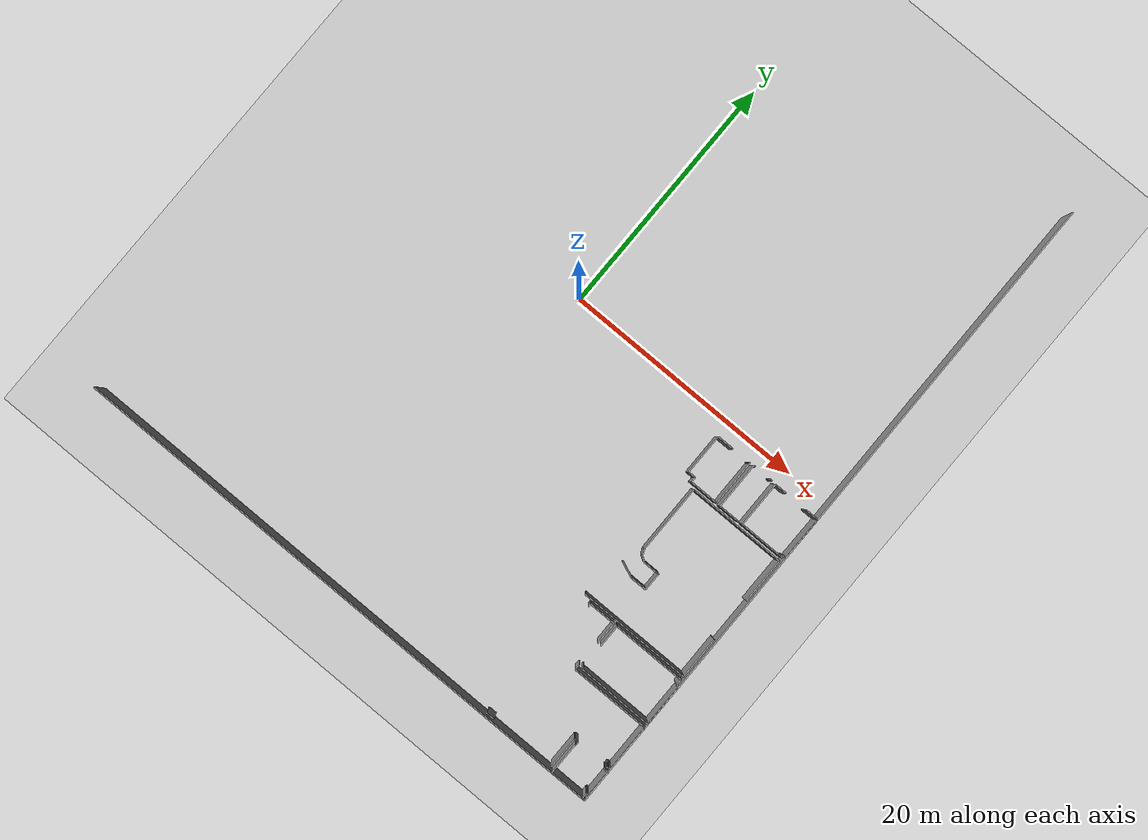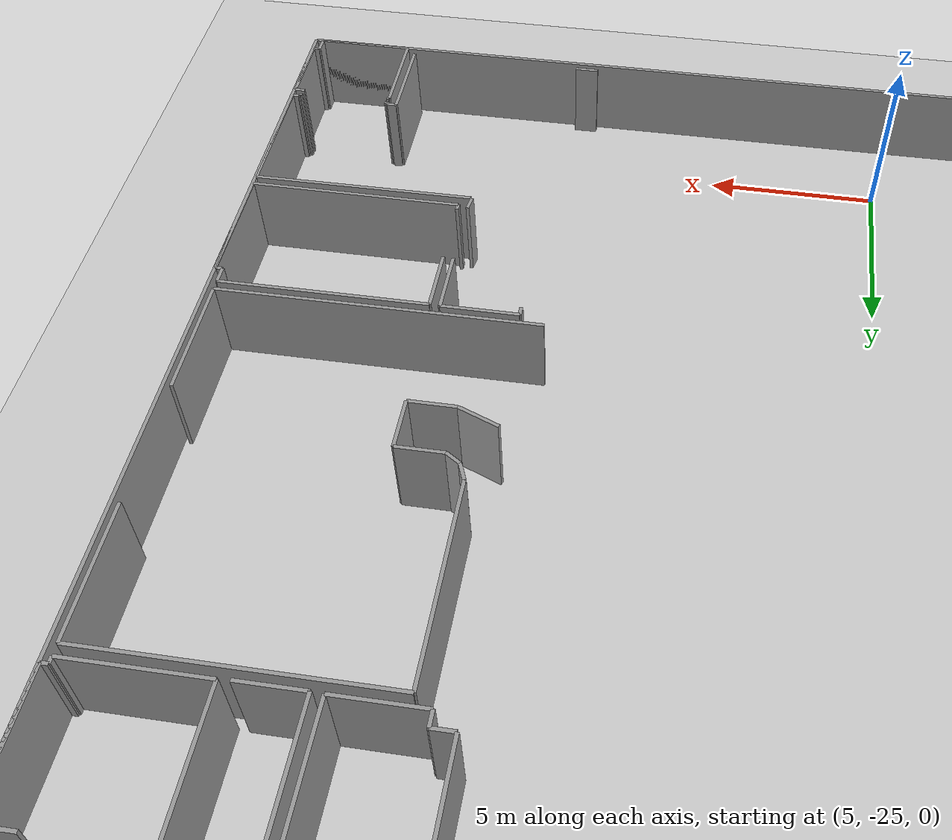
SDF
<sdf version="1.6">
 <world name="default">
  <model name="ground_plane">
   <static>1</static>
   <link name="link">
    <collision name="collision">
     <geometry><plane><normal>0 0 1</normal><size>100 100</size></plane></geometry>
     <surface><friction><ode><mu>100</mu><mu2>50</mu2></ode></friction></surface>
    </collision>
    <visual name="visual">
     <cast_shadows>0</cast_shadows>
     <geometry><plane><normal>0 0 1</normal><size>100 100</size></plane></geometry>
     <material>
      <script><uri>file://media/materials/scripts/gazebo.material</uri><name>Gazebo/Grey</name></script>
     </material>
    </visual>
   </link>
  </model>
  <model name="0510032322">
   <static>1</static>
   <link name="Wall_147">
    <collision name="Wall_147_Collision">
     <geometry><box><size>0.202966432475 0.1 2.5</size></box></geometry>
     <pose>0.101483216237 0 1.25 0 0 0</pose>
    </collision>
    <visual name="Wall_147_Visual">
     <pose>0.101483216237 0 1.25 0 0 0</pose>
     <geometry><box><size>0.202966432475 0.1 2.5</size></box></geometry>
     <material>
      <script><uri>file://media/materials/scripts/gazebo.material</uri><name>Gazebo/Grey</name></script>
      <ambient>1 1 1 1</ambient>
     </material>
    </visual>
    <pose>45.8594974709 -32.3261171722 0 0 0 3.14159265359</pose>
   </link>
   <link name="Wall_148">
    <collision name="Wall_148_Collision">
     <geometry><box><size>0.186592029855 0.1 2.5</size></box></geometry>
     <pose>0.0932960149274 0 1.25 0 0 0</pose>
    </collision>
    <visual name="Wall_148_Visual">
     <pose>0.0932960149274 0 1.25 0 0 0</pose>
     <geometry><box><size>0.186592029855 0.1 2.5</size></box></geometry>
     <material>
      <script><uri>file://media/materials/scripts/gazebo.material</uri><name>Gazebo/Grey</name></script>
      <ambient>1 1 1 1</ambient>
     </material>
    </visual>
    <pose>45.6565310384 -32.3261171722 0 0 0 -1.57079632679</pose>
   </link>
   <link name="Wall_149">
    <collision name="Wall_149_Collision">
     <geometry><box><size>3.704169126 0.1 2.5</size></box></geometry>
     <pose>1.852084563 0 1.25 0 0 0</pose>
    </collision>
    <visual name="Wall_149_Visual">
     <pose>1.852084563 0 1.25 0 0 0</pose>
     <geometry><box><size>3.704169126 0.1 2.5</size></box></geometry>
     <material>
      <script><uri>file://media/materials/scripts/gazebo.material</uri><name>Gazebo/Grey</name></script>
      <ambient>1 1 1 1</ambient>
     </material>
    </visual>
    <pose>45.6565310384 -32.512709202 0 0 0 3.14159265359</pose>
   </link>
   <link name="Wall_150">
    <collision name="Wall_150_Collision">
     <geometry><box><size>3.70988112691 0.1 2.5</size></box></geometry>
     <pose>1.85494056346 0 1.25 0 0 0</pose>
    </collision>
    <visual name="Wall_150_Visual">
     <pose>1.85494056346 0 1.25 0 0 0</pose>
     <geometry><box><size>3.70988112691 0.1 2.5</size></box></geometry>
     <material>
      <script><uri>file://media/materials/scripts/gazebo.material</uri><name>Gazebo/Grey</name></script>
      <ambient>1 1 1 1</ambient>
     </material>
    </visual>
    <pose>41.9523619124 -32.512709202 0 0 0 1.57079632679</pose>
   </link>
   <link name="Wall_151">
    <collision name="Wall_151_Collision">
     <geometry><box><size>0.996299892741 0.1 2.5</size></box></geometry>
     <pose>0.498149946371 0 1.25 0 0 0</pose>
    </collision>
    <visual name="Wall_151_Visual">
     <pose>0.498149946371 0 1.25 0 0 0</pose>
     <geometry><box><size>0.996299892741 0.1 2.5</size></box></geometry>
     <material>
      <script><uri>file://media/materials/scripts/gazebo.material</uri><name>Gazebo/Grey</name></script>
      <ambient>1 1 1 1</ambient>
     </material>
    </visual>
    <pose>41.9523619124 -28.8028280751 0 0 0 0.0</pose>
   </link>
   <link name="Wall_152">
    <collision name="Wall_152_Collision">
     <geometry><box><size>1.06547857048 0.1 2.5</size></box></geometry>
     <pose>0.532739285238 0 1.25 0 0 0</pose>
    </collision>
    <visual name="Wall_152_Visual">
     <pose>0.532739285238 0 1.25 0 0 0</pose>
     <geometry><box><size>1.06547857048 0.1 2.5</size></box></geometry>
     <material>
      <script><uri>file://media/materials/scripts/gazebo.material</uri><name>Gazebo/Grey</name></script>
      <ambient>1 1 1 1</ambient>
     </material>
    </visual>
    <pose>44.8126781034 -28.8028280751 0 0 0 0.0</pose>
   </link>
   <link name="Wall_153">
    <collision name="Wall_153_Collision">
     <geometry><box><size>3.52333850592 0.1 2.5</size></box></geometry>
     <pose>1.76166925296 0 1.25 0 0 0</pose>
    </collision>
    <visual name="Wall_153_Visual">
     <pose>1.76166925296 0 1.25 0 0 0</pose>
     <geometry><box><size>3.52333850592 0.1 2.5</size></box></geometry>
     <material>
      <script><uri>file://media/materials/scripts/gazebo.material</uri><name>Gazebo/Grey</name></script>
      <ambient>1 1 1 1</ambient>
     </material>
    </visual>
    <pose>45.8781566738 -28.8028280751 0 0 0 -1.57609223866</pose>
   </link>
   <link name="Wall_154">
    <collision name="Wall_154_Collision">
     <geometry><box><size>1.75523441417 0.1 2.5</size></box></geometry>
     <pose>0.877617207085 0 1.25 0 0 0</pose>
    </collision>
    <visual name="Wall_154_Visual">
     <pose>0.877617207085 0 1.25 0 0 0</pose>
     <geometry><box><size>1.75523441417 0.1 2.5</size></box></geometry>
     <material>
      <script><uri>file://media/materials/scripts/gazebo.material</uri><name>Gazebo/Grey</name></script>
      <ambient>1 1 1 1</ambient>
     </material>
    </visual>
    <pose>41.6498797306 -32.5391113396 0 0 0 3.14159265359</pose>
   </link>
   <link name="Wall_155">
    <collision name="Wall_155_Collision">
     <geometry><box><size>3.78654887251 0.1 2.5</size></box></geometry>
     <pose>1.89327443626 0 1.25 0 0 0</pose>
    </collision>
    <visual name="Wall_155_Visual">
     <pose>1.89327443626 0 1.25 0 0 0</pose>
     <geometry><box><size>3.78654887251 0.1 2.5</size></box></geometry>
     <material>
      <script><uri>file://media/materials/scripts/gazebo.material</uri><name>Gazebo/Grey</name></script>
      <ambient>1 1 1 1</ambient>
     </material>
    </visual>
    <pose>39.8946453165 -32.5391113396 0 0 0 1.57079632679</pose>
   </link>
   <link name="Wall_156">
    <collision name="Wall_156_Collision">
     <geometry><box><size>0.169329093759 0.1 2.5</size></box></geometry>
     <pose>0.0846645468797 0 1.25 0 0 0</pose>
    </collision>
    <visual name="Wall_156_Visual">
     <pose>0.0846645468797 0 1.25 0 0 0</pose>
     <geometry><box><size>0.169329093759 0.1 2.5</size></box></geometry>
     <material>
      <script><uri>file://media/materials/scripts/gazebo.material</uri><name>Gazebo/Grey</name></script>
      <ambient>1 1 1 1</ambient>
     </material>
    </visual>
    <pose>39.8946453165 -28.7525624671 0 0 0 0.0</pose>
   </link>
   <link name="Wall_157">
    <collision name="Wall_157_Collision">
     <geometry><box><size>0.230891770276 0.1 2.5</size></box></geometry>
     <pose>0.115445885138 0 1.25 0 0 0</pose>
    </collision>
    <visual name="Wall_157_Visual">
     <pose>0.115445885138 0 1.25 0 0 0</pose>
     <geometry><box><size>0.230891770276 0.1 2.5</size></box></geometry>
     <material>
      <script><uri>file://media/materials/scripts/gazebo.material</uri><name>Gazebo/Grey</name></script>
      <ambient>1 1 1 1</ambient>
     </material>
    </visual>
    <pose>41.4098487589 -28.7525624671 0 0 0 0.0</pose>
   </link>
   <link name="Wall_159">
    <collision name="Wall_159_Collision">
     <geometry><box><size>2.35842171068 0.1 2.5</size></box></geometry>
     <pose>1.17921085534 0 1.25 0 0 0</pose>
    </collision>
    <visual name="Wall_159_Visual">
     <pose>1.17921085534 0 1.25 0 0 0</pose>
     <geometry><box><size>2.35842171068 0.1 2.5</size></box></geometry>
     <material>
      <script><uri>file://media/materials/scripts/gazebo.material</uri><name>Gazebo/Grey</name></script>
      <ambient>1 1 1 1</ambient>
     </material>
    </visual>
    <pose>39.5749001987 -32.524894804 0 0 0 3.14159265359</pose>
   </link>
   <link name="Wall_160">
    <collision name="Wall_160_Collision">
     <geometry><box><size>0.418245400253 0.1 2.5</size></box></geometry>
     <pose>0.209122700126 0 1.25 0 0 0</pose>
    </collision>
    <visual name="Wall_160_Visual">
     <pose>0.209122700126 0 1.25 0 0 0</pose>
     <geometry><box><size>0.418245400253 0.1 2.5</size></box></geometry>
     <material>
      <script><uri>file://media/materials/scripts/gazebo.material</uri><name>Gazebo/Grey</name></script>
      <ambient>1 1 1 1</ambient>
     </material>
    </visual>
    <pose>37.216478488 -32.524894804 0 0 0 1.57079632679</pose>
   </link>
   <link name="Wall_161">
    <collision name="Wall_161_Collision">
     <geometry><box><size>0.603695029925 0.1 2.5</size></box></geometry>
     <pose>0.301847514962 0 1.25 0 0 0</pose>
    </collision>
    <visual name="Wall_161_Visual">
     <pose>0.301847514962 0 1.25 0 0 0</pose>
     <geometry><box><size>0.603695029925 0.1 2.5</size></box></geometry>
     <material>
      <script><uri>file://media/materials/scripts/gazebo.material</uri><name>Gazebo/Grey</name></script>
      <ambient>1 1 1 1</ambient>
     </material>
    </visual>
    <pose>37.216478488 -32.1066494037 0 0 0 3.14159265359</pose>
   </link>
   <link name="Wall_162">
    <collision name="Wall_162_Collision">
     <geometry><box><size>3.3035674619 0.1 2.5</size></box></geometry>
     <pose>1.65178373095 0 1.25 0 0 0</pose>
    </collision>
    <visual name="Wall_162_Visual">
     <pose>1.65178373095 0 1.25 0 0 0</pose>
     <geometry><box><size>3.3035674619 0.1 2.5</size></box></geometry>
     <material>
      <script><uri>file://media/materials/scripts/gazebo.material</uri><name>Gazebo/Grey</name></script>
      <ambient>1 1 1 1</ambient>
     </material>
    </visual>
    <pose>36.612783458 -32.1066494037 0 0 0 1.57079632679</pose>
   </link>
   <link name="Wall_163">
    <collision name="Wall_163_Collision">
     <geometry><box><size>1.39385515635 0.1 2.5</size></box></geometry>
     <pose>0.696927578175 0 1.25 0 0 0</pose>
    </collision>
    <visual name="Wall_163_Visual">
     <pose>0.696927578175 0 1.25 0 0 0</pose>
     <geometry><box><size>1.39385515635 0.1 2.5</size></box></geometry>
     <material>
      <script><uri>file://media/materials/scripts/gazebo.material</uri><name>Gazebo/Grey</name></script>
      <ambient>1 1 1 1</ambient>
     </material>
    </visual>
    <pose>36.612783458 -28.8030819418 0 0 0 0.0</pose>
   </link>
   <link name="Wall_164">
    <collision name="Wall_164_Collision">
     <geometry><box><size>0.11360535151 0.1 2.5</size></box></geometry>
     <pose>0.0568026757551 0 1.25 0 0 0</pose>
    </collision>
    <visual name="Wall_164_Visual">
     <pose>0.0568026757551 0 1.25 0 0 0</pose>
     <geometry><box><size>0.11360535151 0.1 2.5</size></box></geometry>
     <material>
      <script><uri>file://media/materials/scripts/gazebo.material</uri><name>Gazebo/Grey</name></script>
      <ambient>1 1 1 1</ambient>
     </material>
    </visual>
    <pose>39.4600255136 -28.8030819418 0 0 0 0.0</pose>
   </link>
   <link name="Wall_165">
    <collision name="Wall_165_Collision">
     <geometry><box><size>3.72181307861 0.1 2.5</size></box></geometry>
     <pose>1.86090653931 0 1.25 0 0 0</pose>
    </collision>
    <visual name="Wall_165_Visual">
     <pose>1.86090653931 0 1.25 0 0 0</pose>
     <geometry><box><size>3.72181307861 0.1 2.5</size></box></geometry>
     <material>
      <script><uri>file://media/materials/scripts/gazebo.material</uri><name>Gazebo/Grey</name></script>
      <ambient>1 1 1 1</ambient>
     </material>
    </visual>
    <pose>39.5736308651 -28.8030819418 0 0 0 -1.57045527432</pose>
   </link>
   <link name="Wall_166">
    <collision name="Wall_166_Collision">
     <geometry><box><size>0.696737178145 0.1 2.5</size></box></geometry>
     <pose>0.348368589072 0 1.25 0 0 0</pose>
    </collision>
    <visual name="Wall_166_Visual">
     <pose>0.348368589072 0 1.25 0 0 0</pose>
     <geometry><box><size>0.696737178145 0.1 2.5</size></box></geometry>
     <material>
      <script><uri>file://media/materials/scripts/gazebo.material</uri><name>Gazebo/Grey</name></script>
      <ambient>1 1 1 1</ambient>
     </material>
    </visual>
    <pose>37.2414843586 -54.5089900548 0 0 0 3.14159265359</pose>
   </link>
   <link name="Wall_195">
    <collision name="Wall_195_Collision">
     <geometry><box><size>0.258690174724 0.1 2.5</size></box></geometry>
     <pose>0.129345087362 0 1.25 0 0 0</pose>
    </collision>
    <visual name="Wall_195_Visual">
     <pose>0.129345087362 0 1.25 0 0 0</pose>
     <geometry><box><size>0.258690174724 0.1 2.5</size></box></geometry>
     <material>
      <script><uri>file://media/materials/scripts/gazebo.material</uri><name>Gazebo/Grey</name></script>
      <ambient>1 1 1 1</ambient>
     </material>
    </visual>
    <pose>37.2699174299 -44.0673254508 0 0 0 1.57079632679</pose>
   </link>
   <link name="Wall_196">
    <collision name="Wall_196_Collision">
     <geometry><box><size>2.17754168174 0.1 2.5</size></box></geometry>
     <pose>1.08877084087 0 1.25 0 0 0</pose>
    </collision>
    <visual name="Wall_196_Visual">
     <pose>1.08877084087 0 1.25 0 0 0</pose>
     <geometry><box><size>2.17754168174 0.1 2.5</size></box></geometry>
     <material>
      <script><uri>file://media/materials/scripts/gazebo.material</uri><name>Gazebo/Grey</name></script>
      <ambient>1 1 1 1</ambient>
     </material>
    </visual>
    <pose>37.2699174299 -43.808635276 0 0 0 0.0</pose>
   </link>
   <link name="Wall_197">
    <collision name="Wall_197_Collision">
     <geometry><box><size>1.80016882136 0.1 2.5</size></box></geometry>
     <pose>0.90008441068 0 1.25 0 0 0</pose>
    </collision>
    <visual name="Wall_197_Visual">
     <pose>0.90008441068 0 1.25 0 0 0</pose>
     <geometry><box><size>1.80016882136 0.1 2.5</size></box></geometry>
     <material>
      <script><uri>file://media/materials/scripts/gazebo.material</uri><name>Gazebo/Grey</name></script>
      <ambient>1 1 1 1</ambient>
     </material>
    </visual>
    <pose>39.4474591116 -43.808635276 0 0 0 -1.57079632679</pose>
   </link>
   <link name="Wall_198">
    <collision name="Wall_198_Collision">
     <geometry><box><size>0.413773529386 0.1 2.5</size></box></geometry>
     <pose>0.206886764693 0 1.25 0 0 0</pose>
    </collision>
    <visual name="Wall_198_Visual">
     <pose>0.206886764693 0 1.25 0 0 0</pose>
     <geometry><box><size>0.413773529386 0.1 2.5</size></box></geometry>
     <material>
      <script><uri>file://media/materials/scripts/gazebo.material</uri><name>Gazebo/Grey</name></script>
      <ambient>1 1 1 1</ambient>
     </material>
    </visual>
    <pose>39.4474591116 -47.6553505582 0 0 0 -1.7105241874</pose>
   </link>
   <link name="Wall_199">
    <collision name="Wall_199_Collision">
     <geometry><box><size>9.10366012325 0.1 2.5</size></box></geometry>
     <pose>4.55183006163 0 1.25 0 0 0</pose>
    </collision>
    <visual name="Wall_199_Visual">
     <pose>4.55183006163 0 1.25 0 0 0</pose>
     <geometry><box><size>9.10366012325 0.1 2.5</size></box></geometry>
     <material>
      <script><uri>file://media/materials/scripts/gazebo.material</uri><name>Gazebo/Grey</name></script>
      <ambient>1 1 1 1</ambient>
     </material>
    </visual>
    <pose>45.6669395734 -43.5310320316 0 0 0 3.14159265359</pose>
   </link>
   <link name="Wall_202">
    <collision name="Wall_202_Collision">
     <geometry><box><size>1.22122420559 0.1 2.5</size></box></geometry>
     <pose>0.610612102797 0 1.25 0 0 0</pose>
    </collision>
    <visual name="Wall_202_Visual">
     <pose>0.610612102797 0 1.25 0 0 0</pose>
     <geometry><box><size>1.22122420559 0.1 2.5</size></box></geometry>
     <material>
      <script><uri>file://media/materials/scripts/gazebo.material</uri><name>Gazebo/Grey</name></script>
      <ambient>1 1 1 1</ambient>
     </material>
    </visual>
    <pose>37.1565659451 -40.0615626765 0 0 0 -0.375681091266</pose>
   </link>
   <link name="Wall_203">
    <collision name="Wall_203_Collision">
     <geometry><box><size>1.32518421203 0.1 2.5</size></box></geometry>
     <pose>0.662592106015 0 1.25 0 0 0</pose>
    </collision>
    <visual name="Wall_203_Visual">
     <pose>0.662592106015 0 1.25 0 0 0</pose>
     <geometry><box><size>1.32518421203 0.1 2.5</size></box></geometry>
     <material>
      <script><uri>file://media/materials/scripts/gazebo.material</uri><name>Gazebo/Grey</name></script>
      <ambient>1 1 1 1</ambient>
     </material>
    </visual>
    <pose>38.2926194602 -40.5096374149 0 0 0 0.0</pose>
   </link>
   <link name="Wall_204">
    <collision name="Wall_204_Collision">
     <geometry><box><size>1.43256982921 0.1 2.5</size></box></geometry>
     <pose>0.716284914606 0 1.25 0 0 0</pose>
    </collision>
    <visual name="Wall_204_Visual">
     <pose>0.716284914606 0 1.25 0 0 0</pose>
     <geometry><box><size>1.43256982921 0.1 2.5</size></box></geometry>
     <material>
      <script><uri>file://media/materials/scripts/gazebo.material</uri><name>Gazebo/Grey</name></script>
      <ambient>1 1 1 1</ambient>
     </material>
    </visual>
    <pose>39.6178036722 -40.5096374149 0 0 0 1.57079632679</pose>
   </link>
   <link name="Wall_205">
    <collision name="Wall_205_Collision">
     <geometry><box><size>1.3189644777 0.1 2.5</size></box></geometry>
     <pose>0.65948223885 0 1.25 0 0 0</pose>
    </collision>
    <visual name="Wall_205_Visual">
     <pose>0.65948223885 0 1.25 0 0 0</pose>
     <geometry><box><size>1.3189644777 0.1 2.5</size></box></geometry>
     <material>
      <script><uri>file://media/materials/scripts/gazebo.material</uri><name>Gazebo/Grey</name></script>
      <ambient>1 1 1 1</ambient>
     </material>
    </visual>
    <pose>39.6178036722 -39.0770675857 0 0 0 3.14159265359</pose>
   </link>
   <link name="Wall_206">
    <collision name="Wall_206_Collision">
     <geometry><box><size>0.470529768932 0.1 2.5</size></box></geometry>
     <pose>0.235264884466 0 1.25 0 0 0</pose>
    </collision>
    <visual name="Wall_206_Visual">
     <pose>0.235264884466 0 1.25 0 0 0</pose>
     <geometry><box><size>0.470529768932 0.1 2.5</size></box></geometry>
     <material>
      <script><uri>file://media/materials/scripts/gazebo.material</uri><name>Gazebo/Grey</name></script>
      <ambient>1 1 1 1</ambient>
     </material>
    </visual>
    <pose>38.2988391945 -39.0770675857 0 0 0 2.57267027563</pose>
   </link>
   <link name="Wall_207">
    <collision name="Wall_207_Collision">
     <geometry><box><size>0.513782627392 0.1 2.5</size></box></geometry>
     <pose>0.256891313696 0 1.25 0 0 0</pose>
    </collision>
    <visual name="Wall_207_Visual">
     <pose>0.256891313696 0 1.25 0 0 0</pose>
     <geometry><box><size>0.513782627392 0.1 2.5</size></box></geometry>
     <material>
      <script><uri>file://media/materials/scripts/gazebo.material</uri><name>Gazebo/Grey</name></script>
      <ambient>1 1 1 1</ambient>
     </material>
    </visual>
    <pose>37.9024263311 -38.8235816784 0 0 0 1.97718035878</pose>
   </link>
   <link name="Wall_208">
    <collision name="Wall_208_Collision">
     <geometry><box><size>5.52134701675 0.1 2.5</size></box></geometry>
     <pose>2.76067350837 0 1.25 0 0 0</pose>
    </collision>
    <visual name="Wall_208_Visual">
     <pose>2.76067350837 0 1.25 0 0 0</pose>
     <geometry><box><size>5.52134701675 0.1 2.5</size></box></geometry>
     <material>
      <script><uri>file://media/materials/scripts/gazebo.material</uri><name>Gazebo/Grey</name></script>
      <ambient>1 1 1 1</ambient>
     </material>
    </visual>
    <pose>37.6993329652 -38.3516434696 0 0 0 1.57079632679</pose>
   </link>
   <link name="Wall_209">
    <collision name="Wall_209_Collision">
     <geometry><box><size>7.95719807315 0.1 2.5</size></box></geometry>
     <pose>3.97859903658 0 1.25 0 0 0</pose>
    </collision>
    <visual name="Wall_209_Visual">
     <pose>3.97859903658 0 1.25 0 0 0</pose>
     <geometry><box><size>7.95719807315 0.1 2.5</size></box></geometry>
     <material>
      <script><uri>file://media/materials/scripts/gazebo.material</uri><name>Gazebo/Grey</name></script>
      <ambient>1 1 1 1</ambient>
     </material>
    </visual>
    <pose>37.6993329652 -32.8302964528 0 0 0 0.0</pose>
   </link>
   <link name="Wall_210">
    <collision name="Wall_210_Collision">
     <geometry><box><size>3.69718779155 0.1 2.5</size></box></geometry>
     <pose>1.84859389578 0 1.25 0 0 0</pose>
    </collision>
    <visual name="Wall_210_Visual">
     <pose>1.84859389578 0 1.25 0 0 0</pose>
     <geometry><box><size>3.69718779155 0.1 2.5</size></box></geometry>
     <material>
      <script><uri>file://media/materials/scripts/gazebo.material</uri><name>Gazebo/Grey</name></script>
      <ambient>1 1 1 1</ambient>
     </material>
    </visual>
    <pose>45.6565310384 -32.8302964528 0 0 0 -1.57079632679</pose>
   </link>
   <link name="Wall_211">
    <collision name="Wall_211_Collision">
     <geometry><box><size>3.41972732062 0.1 2.5</size></box></geometry>
     <pose>1.70986366031 0 1.25 0 0 0</pose>
    </collision>
    <visual name="Wall_211_Visual">
     <pose>1.70986366031 0 1.25 0 0 0</pose>
     <geometry><box><size>3.41972732062 0.1 2.5</size></box></geometry>
     <material>
      <script><uri>file://media/materials/scripts/gazebo.material</uri><name>Gazebo/Grey</name></script>
      <ambient>1 1 1 1</ambient>
     </material>
    </visual>
    <pose>45.6565310384 -40.1113205511 0 0 0 -1.56775264813</pose>
   </link>
   <link name="Wall_212">
    <collision name="Wall_212_Collision">
     <geometry><box><size>3.46946935512 0.1 2.5</size></box></geometry>
     <pose>1.73473467756 0 1.25 0 0 0</pose>
    </collision>
    <visual name="Wall_212_Visual">
     <pose>1.73473467756 0 1.25 0 0 0</pose>
     <geometry><box><size>3.46946935512 0.1 2.5</size></box></geometry>
     <material>
      <script><uri>file://media/materials/scripts/gazebo.material</uri><name>Gazebo/Grey</name></script>
      <ambient>1 1 1 1</ambient>
     </material>
    </visual>
    <pose>45.8598782709 -47.7642593756 0 0 0 1.57079632679</pose>
   </link>
   <link name="Wall_213">
    <collision name="Wall_213_Collision">
     <geometry><box><size>0.197889098329 0.1 2.5</size></box></geometry>
     <pose>0.0989445491645 0 1.25 0 0 0</pose>
    </collision>
    <visual name="Wall_213_Visual">
     <pose>0.0989445491645 0 1.25 0 0 0</pose>
     <geometry><box><size>0.197889098329 0.1 2.5</size></box></geometry>
     <material>
      <script><uri>file://media/materials/scripts/gazebo.material</uri><name>Gazebo/Grey</name></script>
      <ambient>1 1 1 1</ambient>
     </material>
    </visual>
    <pose>45.8598782709 -44.2947900205 0 0 0 3.14159265359</pose>
   </link>
   <link name="Wall_214">
    <collision name="Wall_214_Collision">
     <geometry><box><size>0.47739634305 0.1 2.5</size></box></geometry>
     <pose>0.238698171525 0 1.25 0 0 0</pose>
    </collision>
    <visual name="Wall_214_Visual">
     <pose>0.238698171525 0 1.25 0 0 0</pose>
     <geometry><box><size>0.47739634305 0.1 2.5</size></box></geometry>
     <material>
      <script><uri>file://media/materials/scripts/gazebo.material</uri><name>Gazebo/Grey</name></script>
      <ambient>1 1 1 1</ambient>
     </material>
    </visual>
    <pose>45.6619891726 -44.2947900205 0 0 0 1.57079632679</pose>
   </link>
   <link name="Wall_215">
    <collision name="Wall_215_Collision">
     <geometry><box><size>5.92740681505 0.1 2.5</size></box></geometry>
     <pose>2.96370340753 0 1.25 0 0 0</pose>
    </collision>
    <visual name="Wall_215_Visual">
     <pose>2.96370340753 0 1.25 0 0 0</pose>
     <geometry><box><size>5.92740681505 0.1 2.5</size></box></geometry>
     <material>
      <script><uri>file://media/materials/scripts/gazebo.material</uri><name>Gazebo/Grey</name></script>
      <ambient>1 1 1 1</ambient>
     </material>
    </visual>
    <pose>45.6619891726 -43.8173936774 0 0 0 3.14159265359</pose>
   </link>
   <link name="Wall_216">
    <collision name="Wall_216_Collision">
     <geometry><box><size>1.80588082227 0.1 2.5</size></box></geometry>
     <pose>0.902940411137 0 1.25 0 0 0</pose>
    </collision>
    <visual name="Wall_216_Visual">
     <pose>0.902940411137 0 1.25 0 0 0</pose>
     <geometry><box><size>1.80588082227 0.1 2.5</size></box></geometry>
     <material>
      <script><uri>file://media/materials/scripts/gazebo.material</uri><name>Gazebo/Grey</name></script>
      <ambient>1 1 1 1</ambient>
     </material>
    </visual>
    <pose>39.7345823575 -43.8173936774 0 0 0 -1.57079632679</pose>
   </link>
   <link name="Wall_217">
    <collision name="Wall_217_Collision">
     <geometry><box><size>0.191923230708 0.1 2.5</size></box></geometry>
     <pose>0.0959616153539 0 1.25 0 0 0</pose>
    </collision>
    <visual name="Wall_217_Visual">
     <pose>0.0959616153539 0 1.25 0 0 0</pose>
     <geometry><box><size>0.191923230708 0.1 2.5</size></box></geometry>
     <material>
      <script><uri>file://media/materials/scripts/gazebo.material</uri><name>Gazebo/Grey</name></script>
      <ambient>1 1 1 1</ambient>
     </material>
    </visual>
    <pose>39.7345823575 -47.5526614751 0 0 0 -1.57079632679</pose>
   </link>
   <link name="Wall_218">
    <collision name="Wall_218_Collision">
     <geometry><box><size>6.12532751117 0.1 2.5</size></box></geometry>
     <pose>3.06266375559 0 1.25 0 0 0</pose>
    </collision>
    <visual name="Wall_218_Visual">
     <pose>3.06266375559 0 1.25 0 0 0</pose>
     <geometry><box><size>6.12532751117 0.1 2.5</size></box></geometry>
     <material>
      <script><uri>file://media/materials/scripts/gazebo.material</uri><name>Gazebo/Grey</name></script>
      <ambient>1 1 1 1</ambient>
     </material>
    </visual>
    <pose>39.7345823575 -47.7445847058 0 0 0 -0.00321202476271</pose>
   </link>
   <link name="Wall_219">
    <collision name="Wall_219_Collision">
     <geometry><box><size>2.62713962034 0.1 2.5</size></box></geometry>
     <pose>1.31356981017 0 1.25 0 0 0</pose>
    </collision>
    <visual name="Wall_219_Visual">
     <pose>1.31356981017 0 1.25 0 0 0</pose>
     <geometry><box><size>2.62713962034 0.1 2.5</size></box></geometry>
     <material>
      <script><uri>file://media/materials/scripts/gazebo.material</uri><name>Gazebo/Grey</name></script>
      <ambient>1 1 1 1</ambient>
     </material>
    </visual>
    <pose>42.5360014724 -54.5136865889 0 0 0 1.57079632679</pose>
   </link>
   <link name="Wall_220">
    <collision name="Wall_220_Collision">
     <geometry><box><size>0.275699244112 0.1 2.5</size></box></geometry>
     <pose>0.137849622056 0 1.25 0 0 0</pose>
    </collision>
    <visual name="Wall_220_Visual">
     <pose>0.137849622056 0 1.25 0 0 0</pose>
     <geometry><box><size>0.275699244112 0.1 2.5</size></box></geometry>
     <material>
      <script><uri>file://media/materials/scripts/gazebo.material</uri><name>Gazebo/Grey</name></script>
      <ambient>1 1 1 1</ambient>
     </material>
    </visual>
    <pose>42.5360014724 -51.8865469685 0 0 0 0.0</pose>
   </link>
   <link name="Wall_221">
    <collision name="Wall_221_Collision">
     <geometry><box><size>0.0695594777962 0.1 2.5</size></box></geometry>
     <pose>0.0347797388981 0 1.25 0 0 0</pose>
    </collision>
    <visual name="Wall_221_Visual">
     <pose>0.0347797388981 0 1.25 0 0 0</pose>
     <geometry><box><size>0.0695594777962 0.1 2.5</size></box></geometry>
     <material>
      <script><uri>file://media/materials/scripts/gazebo.material</uri><name>Gazebo/Grey</name></script>
      <ambient>1 1 1 1</ambient>
     </material>
    </visual>
    <pose>42.8117007165 -51.8865469685 0 0 0 -1.57079632679</pose>
   </link>
   <link name="Wall_222">
    <collision name="Wall_222_Collision">
     <geometry><box><size>0.103577616572 0.1 2.5</size></box></geometry>
     <pose>0.0517888082862 0 1.25 0 0 0</pose>
    </collision>
    <visual name="Wall_222_Visual">
     <pose>0.0517888082862 0 1.25 0 0 0</pose>
     <geometry><box><size>0.103577616572 0.1 2.5</size></box></geometry>
     <material>
      <script><uri>file://media/materials/scripts/gazebo.material</uri><name>Gazebo/Grey</name></script>
      <ambient>1 1 1 1</ambient>
     </material>
    </visual>
    <pose>42.8117007165 -51.9561064463 0 0 0 0.0</pose>
   </link>
   <link name="Wall_223">
    <collision name="Wall_223_Collision">
     <geometry><box><size>0.109797350901 0.1 2.5</size></box></geometry>
     <pose>0.0548986754505 0 1.25 0 0 0</pose>
    </collision>
    <visual name="Wall_223_Visual">
     <pose>0.0548986754505 0 1.25 0 0 0</pose>
     <geometry><box><size>0.109797350901 0.1 2.5</size></box></geometry>
     <material>
      <script><uri>file://media/materials/scripts/gazebo.material</uri><name>Gazebo/Grey</name></script>
      <ambient>1 1 1 1</ambient>
     </material>
    </visual>
    <pose>45.5576499559 -51.9561064463 0 0 0 0.0</pose>
   </link>
   <link name="Wall_224">
    <collision name="Wall_224_Collision">
     <geometry><box><size>0.0718442781617 0.1 2.5</size></box></geometry>
     <pose>0.0359221390809 0 1.25 0 0 0</pose>
    </collision>
    <visual name="Wall_224_Visual">
     <pose>0.0359221390809 0 1.25 0 0 0</pose>
     <geometry><box><size>0.0718442781617 0.1 2.5</size></box></geometry>
     <material>
      <script><uri>file://media/materials/scripts/gazebo.material</uri><name>Gazebo/Grey</name></script>
      <ambient>1 1 1 1</ambient>
     </material>
    </visual>
    <pose>45.6674473068 -51.9561064463 0 0 0 1.57079632679</pose>
   </link>
   <link name="Wall_225">
    <collision name="Wall_225_Collision">
     <geometry><box><size>0.186592029855 0.1 2.5</size></box></geometry>
     <pose>0.0932960149274 0 1.25 0 0 0</pose>
    </collision>
    <visual name="Wall_225_Visual">
     <pose>0.0932960149274 0 1.25 0 0 0</pose>
     <geometry><box><size>0.186592029855 0.1 2.5</size></box></geometry>
     <material>
      <script><uri>file://media/materials/scripts/gazebo.material</uri><name>Gazebo/Grey</name></script>
      <ambient>1 1 1 1</ambient>
     </material>
    </visual>
    <pose>45.6674473068 -51.8842621681 0 0 0 0.0</pose>
   </link>
   <link name="Wall_226">
    <collision name="Wall_226_Collision">
     <geometry><box><size>3.8224710116 0.1 2.5</size></box></geometry>
     <pose>1.9112355058 0 1.25 0 0 0</pose>
    </collision>
    <visual name="Wall_226_Visual">
     <pose>1.9112355058 0 1.25 0 0 0</pose>
     <geometry><box><size>3.8224710116 0.1 2.5</size></box></geometry>
     <material>
      <script><uri>file://media/materials/scripts/gazebo.material</uri><name>Gazebo/Grey</name></script>
      <ambient>1 1 1 1</ambient>
     </material>
    </visual>
    <pose>45.8540393366 -51.8842621681 0 0 0 1.57079632679</pose>
   </link>
   <link name="Wall_227">
    <collision name="Wall_227_Collision">
     <geometry><box><size>6.42247820794 0.1 2.5</size></box></geometry>
     <pose>3.21123910397 0 1.25 0 0 0</pose>
    </collision>
    <visual name="Wall_227_Visual">
     <pose>3.21123910397 0 1.25 0 0 0</pose>
     <geometry><box><size>6.42247820794 0.1 2.5</size></box></geometry>
     <material>
      <script><uri>file://media/materials/scripts/gazebo.material</uri><name>Gazebo/Grey</name></script>
      <ambient>1 1 1 1</ambient>
     </material>
    </visual>
    <pose>45.8540393366 -48.0617911566 0 0 0 -3.13846994895</pose>
   </link>
   <link name="Wall_228">
    <collision name="Wall_228_Collision">
     <geometry><box><size>2.8260441855 0.1 2.5</size></box></geometry>
     <pose>1.41302209275 0 1.25 0 0 0</pose>
    </collision>
    <visual name="Wall_228_Visual">
     <pose>1.41302209275 0 1.25 0 0 0</pose>
     <geometry><box><size>2.8260441855 0.1 2.5</size></box></geometry>
     <material>
      <script><uri>file://media/materials/scripts/gazebo.material</uri><name>Gazebo/Grey</name></script>
      <ambient>1 1 1 1</ambient>
     </material>
    </visual>
    <pose>45.6509459708 -54.77072663 0 0 0 3.14159265359</pose>
   </link>
   <link name="Wall_229">
    <collision name="Wall_229_Collision">
     <geometry><box><size>2.59870654913 0.1 2.5</size></box></geometry>
     <pose>1.29935327456 0 1.25 0 0 0</pose>
    </collision>
    <visual name="Wall_229_Visual">
     <pose>1.29935327456 0 1.25 0 0 0</pose>
     <geometry><box><size>2.59870654913 0.1 2.5</size></box></geometry>
     <material>
      <script><uri>file://media/materials/scripts/gazebo.material</uri><name>Gazebo/Grey</name></script>
      <ambient>1 1 1 1</ambient>
     </material>
    </visual>
    <pose>42.8249017853 -54.77072663 0 0 0 1.57079632679</pose>
   </link>
   <link name="Wall_230">
    <collision name="Wall_230_Collision">
     <geometry><box><size>0.0808565462704 0.1 2.5</size></box></geometry>
     <pose>0.0404282731352 0 1.25 0 0 0</pose>
    </collision>
    <visual name="Wall_230_Visual">
     <pose>0.0404282731352 0 1.25 0 0 0</pose>
     <geometry><box><size>0.0808565462704 0.1 2.5</size></box></geometry>
     <material>
      <script><uri>file://media/materials/scripts/gazebo.material</uri><name>Gazebo/Grey</name></script>
      <ambient>1 1 1 1</ambient>
     </material>
    </visual>
    <pose>42.8249017853 -52.1720200809 0 0 0 0.0</pose>
   </link>
   <link name="Wall_231">
    <collision name="Wall_231_Collision">
     <geometry><box><size>0.296643247463 0.1 2.5</size></box></geometry>
     <pose>0.148321623731 0 1.25 0 0 0</pose>
    </collision>
    <visual name="Wall_231_Visual">
     <pose>0.148321623731 0 1.25 0 0 0</pose>
     <geometry><box><size>0.296643247463 0.1 2.5</size></box></geometry>
     <material>
      <script><uri>file://media/materials/scripts/gazebo.material</uri><name>Gazebo/Grey</name></script>
      <ambient>1 1 1 1</ambient>
     </material>
    </visual>
    <pose>45.5500339547 -52.1720200809 0 0 0 0.0</pose>
   </link>
   <link name="Wall_232">
    <collision name="Wall_232_Collision">
     <geometry><box><size>2.13222647449 0.1 2.5</size></box></geometry>
     <pose>1.06611323724 0 1.25 0 0 0</pose>
    </collision>
    <visual name="Wall_232_Visual">
     <pose>1.06611323724 0 1.25 0 0 0</pose>
     <geometry><box><size>2.13222647449 0.1 2.5</size></box></geometry>
     <material>
      <script><uri>file://media/materials/scripts/gazebo.material</uri><name>Gazebo/Grey</name></script>
      <ambient>1 1 1 1</ambient>
     </material>
    </visual>
    <pose>45.8466772021 -52.1720200809 0 0 0 -1.57079632679</pose>
   </link>
   <link name="Wall_233">
    <collision name="Wall_233_Collision">
     <geometry><box><size>0.190146163757 0.1 2.5</size></box></geometry>
     <pose>0.0950730818784 0 1.25 0 0 0</pose>
    </collision>
    <visual name="Wall_233_Visual">
     <pose>0.0950730818784 0 1.25 0 0 0</pose>
     <geometry><box><size>0.190146163757 0.1 2.5</size></box></geometry>
     <material>
      <script><uri>file://media/materials/scripts/gazebo.material</uri><name>Gazebo/Grey</name></script>
      <ambient>1 1 1 1</ambient>
     </material>
    </visual>
    <pose>45.8466772021 -54.3042465553 0 0 0 3.14159265359</pose>
   </link>
   <link name="Wall_234">
    <collision name="Wall_234_Collision">
     <geometry><box><size>0.466513507857 0.1 2.5</size></box></geometry>
     <pose>0.233256753928 0 1.25 0 0 0</pose>
    </collision>
    <visual name="Wall_234_Visual">
     <pose>0.233256753928 0 1.25 0 0 0</pose>
     <geometry><box><size>0.466513507857 0.1 2.5</size></box></geometry>
     <material>
      <script><uri>file://media/materials/scripts/gazebo.material</uri><name>Gazebo/Grey</name></script>
      <ambient>1 1 1 1</ambient>
     </material>
    </visual>
    <pose>45.6565310384 -54.3042465553 0 0 0 -1.58276854387</pose>
   </link>
   <link name="Wall_235">
    <collision name="Wall_235_Collision">
     <geometry><box><size>54.77072663 0.1 2.5</size></box></geometry>
     <pose>27.385363315 0 1.25 0 0 0</pose>
    </collision>
    <visual name="Wall_235_Visual">
     <pose>27.385363315 0 1.25 0 0 0</pose>
     <geometry><box><size>54.77072663 0.1 2.5</size></box></geometry>
     <material>
      <script><uri>file://media/materials/scripts/gazebo.material</uri><name>Gazebo/Grey</name></script>
      <ambient>1 1 1 1</ambient>
     </material>
    </visual>
    <pose>45.8781566738 -54.77072663 0 0 0 1.57079632679</pose>
   </link>
   <link name="Wall_236">
    <collision name="Wall_236_Collision">
     <geometry><box><size>45.8781566738 0.1 2.5</size></box></geometry>
     <pose>22.9390783369 0 1.25 0 0 0</pose>
    </collision>
    <visual name="Wall_236_Visual">
     <pose>22.9390783369 0 1.25 0 0 0</pose>
     <geometry><box><size>45.8781566738 0.1 2.5</size></box></geometry>
     <material>
      <script><uri>file://media/materials/scripts/gazebo.material</uri><name>Gazebo/Grey</name></script>
      <ambient>1 1 1 1</ambient>
     </material>
    </visual>
    <pose>45.8781566738 -54.77072663 0 0 0 3.14159265359</pose>
   </link>
   <pose>-22.5 27.37072663 0 0 0 0</pose>
  </model>
 </world>
</sdf>
